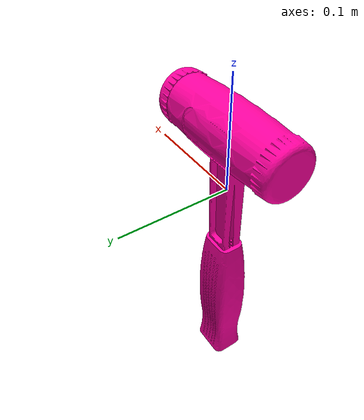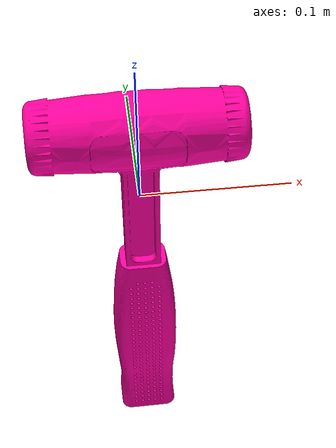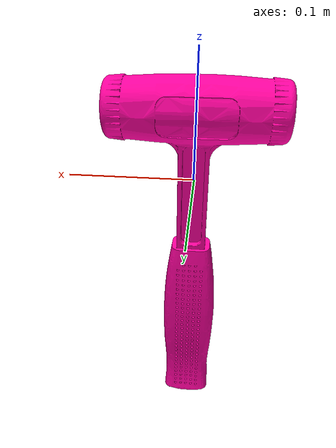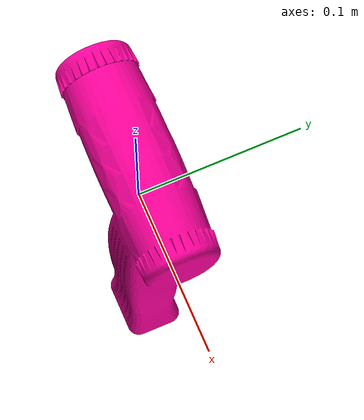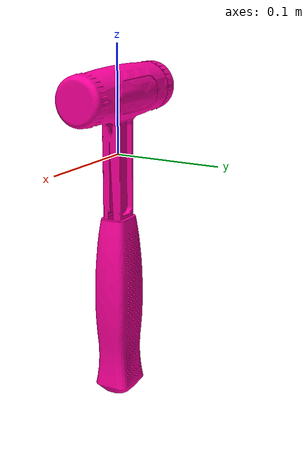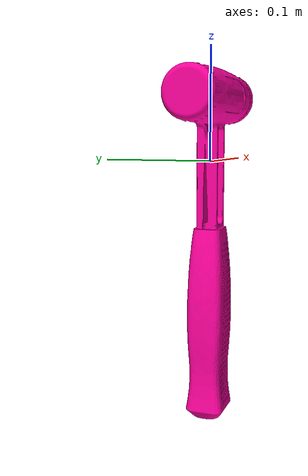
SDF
<?xml version="1.0"?>
<sdf version="1.7">
  <model name="dead_blow_mallet_large_bright">
    <pose>0 0 0 0 0 0</pose>
    <static>false</static>
    <link name="link">
      <!-- link frame = tool CoM; Z = long axis (+ toward tool end), X = forward, Y = Z x X -->
      <inertial>
        <pose>0 0 0 0 0 0</pose>
        <mass>1.077271</mass>
        <inertia>
          <ixx>9.103727e-03</ixx>
          <ixy>2.429385e-09</ixy>
          <ixz>-1.513230e-06</ixz>
          <iyy>9.773139e-03</iyy>
          <iyz>7.694414e-07</iyz>
          <izz>9.075805e-04</izz>
        </inertia>
      </inertial>
      <collision name="collision">
        <geometry>
          <mesh>
            <uri>model://dead_blow_mallet_large/meshes/dead_blow_mallet_large.dae</uri>
          </mesh>
        </geometry>
      </collision>
      <visual name="visual">
        <geometry>
          <mesh>
            <uri>model://dead_blow_mallet_large/meshes/dead_blow_mallet_large.dae</uri>
          </mesh>
        </geometry>
        <material>
          <ambient>0.450 0.000 0.277 1.0</ambient>
          <diffuse>1.000 0.000 0.615 1.0</diffuse>
          <specular>0.85 0.85 0.85 1.0</specular>
          <emissive>0 0 0 1.0</emissive>
        </material>
      </visual>
    </link>
  </model>
</sdf>
